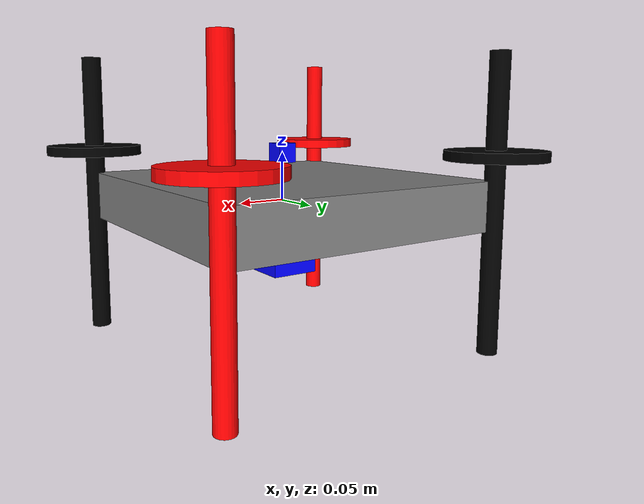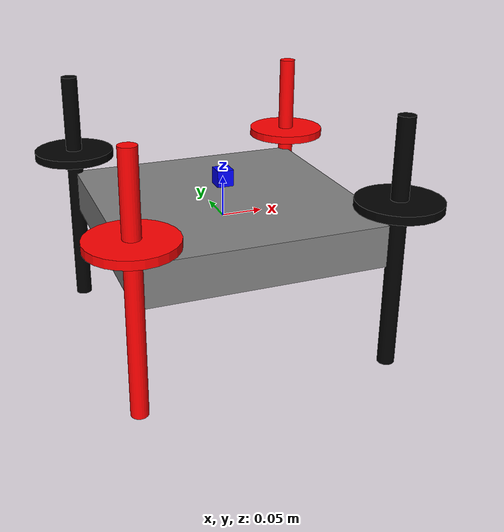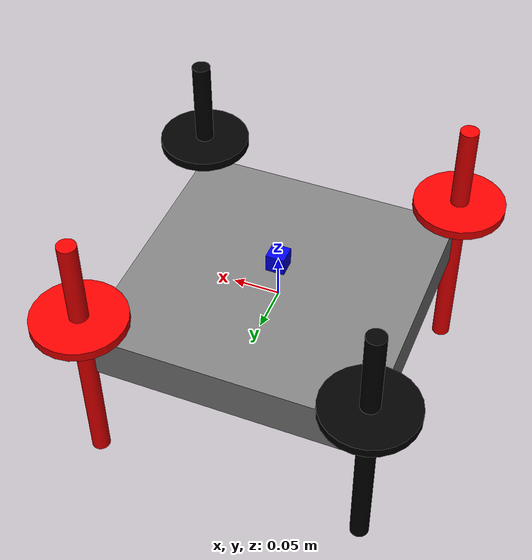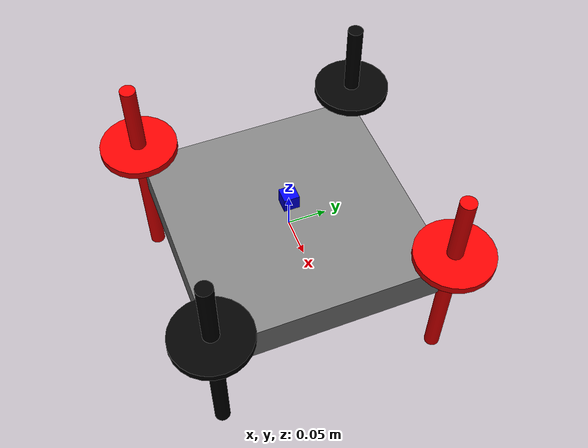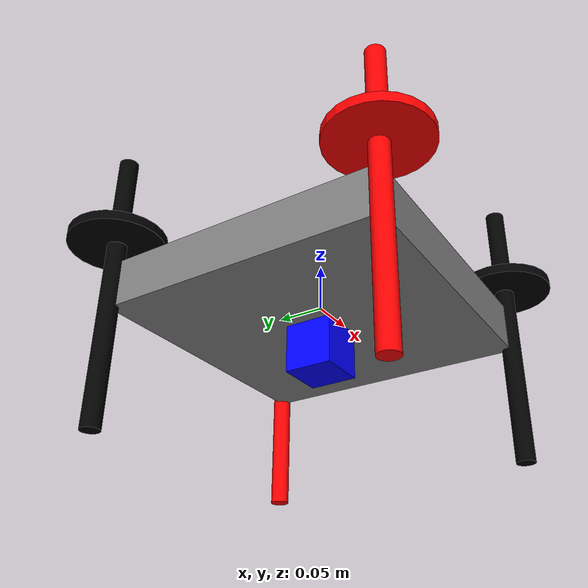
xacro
<?xml version="1.0"?>
<robot xmlns:xacro="http://ros.org/wiki/xacro" name="dji_quad">

  <!-- Materials -->
  <material name="black"><color rgba="0 0 0 1"/></material>
  <material name="red"><color rgba="1 0 0 1"/></material>
  <material name="gray"><color rgba="0.5 0.5 0.5 1"/></material>
  <material name="blue"><color rgba="0 0 1 1"/></material>
  <material name="green"><color rgba="0 1 0 1"/></material>

  <!-- Base link -->
  <link name="base_link">
    <visual>
      <geometry>
        <box size="0.3 0.3 0.05"/>
      </geometry>
      <material name="gray"/>
    </visual>
    <collision>
      <geometry>
        <box size="0.3 0.3 0.05"/>
      </geometry>
    </collision>
    <inertial>
      <mass value="1.0"/>
      <origin xyz="0 0 0"/>
      <inertia ixx="0.01" ixy="0.0" ixz="0.0" iyy="0.01" iyz="0.0" izz="0.02"/>
    </inertial>
  </link>

  <!-- Macro for arms and rotors -->
  <xacro:macro name="arm_with_rotor" params="name x y color">
    <link name="${name}_arm">
      <visual>
        <geometry>
          <cylinder radius="0.01" length="0.3"/>
        </geometry>
        <material name="${color}"/>
      </visual>
      <origin xyz="${x} ${y} 0" rpy="0 0 1.57"/>
    </link>

    <joint name="${name}_arm_joint" type="fixed">
      <parent link="base_link"/>
      <child link="${name}_arm"/>
      <origin xyz="${x} ${y} 0" rpy="0 0 1.57"/>
    </joint>

    <link name="${name}_rotor">
      <visual>
        <geometry>
          <cylinder radius="0.05" length="0.01"/>
        </geometry>
        <material name="${color}"/>
      </visual>
    </link>

    <joint name="${name}_rotor_joint" type="fixed">
      <parent link="${name}_arm"/>
      <child link="${name}_rotor"/>
      <origin xyz="0 0 0.05" rpy="0 0 0"/>
    </joint>
  </xacro:macro>

  <!-- Arms + Rotors -->
  <xacro:arm_with_rotor name="FL" x="0.15" y="0.15" color="red"/>
  <xacro:arm_with_rotor name="FR" x="0.15" y="-0.15" color="black"/>
  <xacro:arm_with_rotor name="BL" x="-0.15" y="0.15" color="black"/>
  <xacro:arm_with_rotor name="BR" x="-0.15" y="-0.15" color="red"/>

  <!-- Camera -->
  <link name="camera_link">
    <visual>
      <geometry>
        <box size="0.05 0.05 0.05"/>
      </geometry>
      <material name="blue"/>
    </visual>
  </link>

  <joint name="camera_joint" type="fixed">
    <parent link="base_link"/>
    <child link="camera_link"/>
    <origin xyz="0 0 -0.05" rpy="0 0 0"/>
  </joint>

  <!-- IMU -->
  <link name="imu_link">
    <visual>
      <geometry>
        <box size="0.02 0.02 0.02"/>
      </geometry>
      <material name="blue"/>
    </visual>
    <inertial>
      <mass value="0.01"/>
      <origin xyz="0 0 0"/>
      <inertia ixx="1e-5" iyy="1e-5" izz="1e-5" ixy="0" ixz="0" iyz="0"/>
    </inertial>
  </link>

  <joint name="imu_joint" type="fixed">
    <parent link="base_link"/>
    <child link="imu_link"/>
    <origin xyz="0 0 0.05" rpy="0 0 0"/>
  </joint>

  <gazebo reference="imu_link">
    <plugin name="imu_plugin" filename="libgazebo_ros_imu_sensor.so">
      <ros>
        <remapping>imu:=/imu/data</remapping>
      </ros>
      <update_rate>100.0</update_rate>
      <topic_name>/imu/data</topic_name>
      <gaussian_noise>0.005</gaussian_noise>
      <frame_name>imu_link</frame_name>
    </plugin>
  </gazebo>

  <!-- GPS -->
  <link name="gps_link">
    <visual>
      <geometry>
        <box size="0.02 0.02 0.02"/>
      </geometry>
      <material name="green"/>
    </visual>
    <inertial>
      <mass value="0.01"/>
      <origin xyz="0 0 0"/>
      <inertia ixx="1e-5" iyy="1e-5" izz="1e-5" ixy="0" ixz="0" iyz="0"/>
    </inertial>
  </link>

  <joint name="gps_joint" type="fixed">
    <parent link="base_link"/>
    <child link="gps_link"/>
    <origin xyz="0 0 -0.05" rpy="0 0 0"/>
  </joint>

  <gazebo reference="gps_link">
    <plugin name="gps_plugin" filename="libgazebo_ros_gps.so">
      <ros>
        <remapping>fix:=/gps/fix</remapping>
      </ros>
      <update_rate>5.0</update_rate>
      <topic_name>/gps/fix</topic_name>
      <gaussian_noise>0.0005</gaussian_noise>
      <frame_name>gps_link</frame_name>
    </plugin>
  </gazebo>

  <gazebo reference="base_link">
    <plugin name="force_move_plugin" filename="libgazebo_ros_force_based_move.so">
      <ros>
        <remapping>cmd_vel:=/cmd_vel</remapping>
      </ros>
      <topic_name>/cmd_vel</topic_name>
      <body_name>base_link</body_name>
      <frame_name>base_link</frame_name>
    </plugin>
  </gazebo>

</robot>
